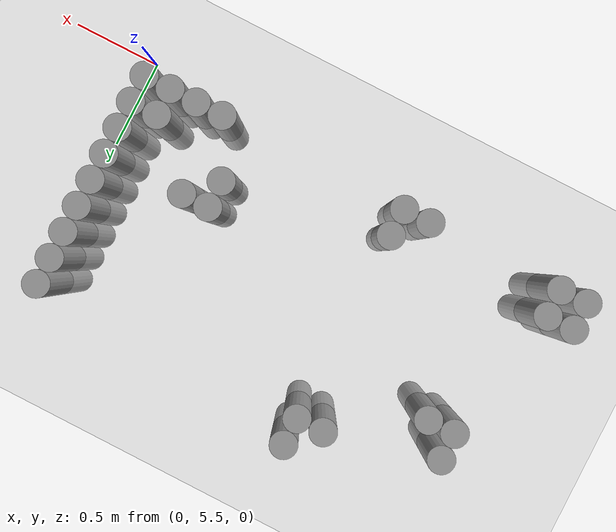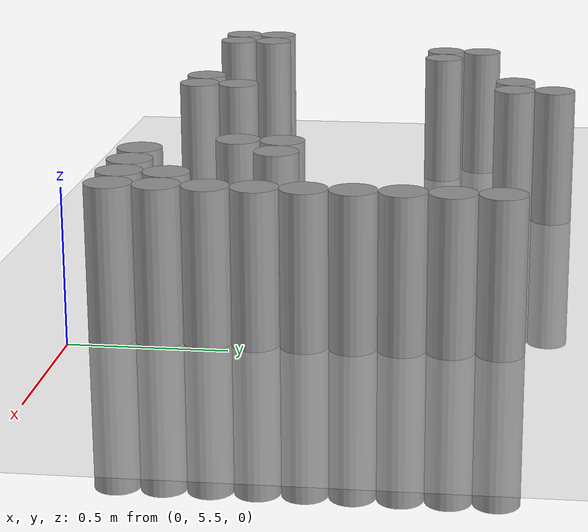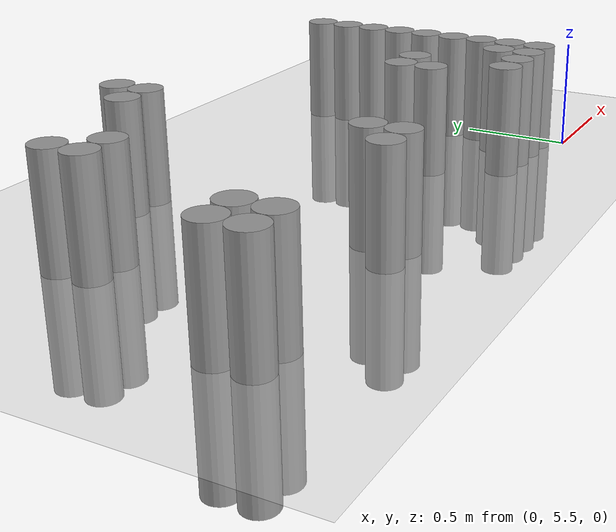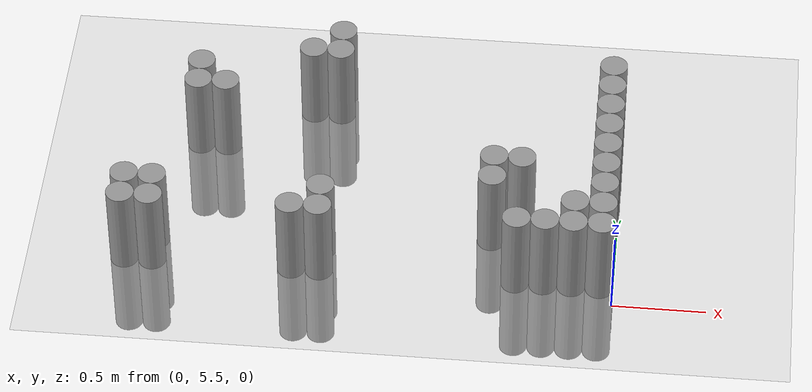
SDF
<sdf version="1.6">
 <world name="default">
  <model name="ground_plane">
   <static>1</static>
   <static>1</static>
   <link name="link">
    <collision name="collision">
     <geometry><plane><normal>0 0 1</normal><size>100 100</size></plane></geometry>
     <surface><friction><ode><mu>100</mu><mu2>50</mu2></ode></friction></surface>
    </collision>
    <visual name="visual">
     <cast_shadows>0</cast_shadows>
     <geometry><plane><normal>0 0 1</normal><size>100 100</size></plane></geometry>
     <material>
      <script><uri>file://media/materials/scripts/gazebo.material</uri><name>Gazebo/Grey</name></script>
     </material>
    </visual>
   </link>
  </model>
  <model name="unit_cylinder_163">
   <static>1</static>
   <pose>-2.625000 5.625000 0.000000 0.000000 0.000000 0.000000</pose>
   <link name="link">
    <inertial>
     <mass>1</mass>
     <inertia><ixx>0.145833</ixx><ixy>0</ixy><ixz>0</ixz><iyy>0.145833</iyy><iyz>0</iyz><izz>0.125</izz></inertia>
    </inertial>
    <collision name="collision">
     <geometry><cylinder><radius>0.075000</radius><length>1</length></cylinder></geometry>
    </collision>
    <visual name="visual">
     <geometry><cylinder><radius>0.075000</radius><length>1</length></cylinder></geometry>
     <material>
      <script><name>Gazebo/Grey</name><uri>file://media/materials/scripts/gazebo.material</uri></script>
     </material>
    </visual>
   </link>
  </model>
  <model name="unit_cylinder_164">
   <static>1</static>
   <pose>-2.625000 5.775000 0.000000 0.000000 0.000000 0.000000</pose>
   <link name="link">
    <inertial>
     <mass>1</mass>
     <inertia><ixx>0.145833</ixx><ixy>0</ixy><ixz>0</ixz><iyy>0.145833</iyy><iyz>0</iyz><izz>0.125</izz></inertia>
    </inertial>
    <collision name="collision">
     <geometry><cylinder><radius>0.075000</radius><length>1</length></cylinder></geometry>
    </collision>
    <visual name="visual">
     <geometry><cylinder><radius>0.075000</radius><length>1</length></cylinder></geometry>
     <material>
      <script><name>Gazebo/Grey</name><uri>file://media/materials/scripts/gazebo.material</uri></script>
     </material>
    </visual>
   </link>
  </model>
  <model name="unit_cylinder_168">
   <static>1</static>
   <pose>-2.475000 5.625000 0.000000 0.000000 0.000000 0.000000</pose>
   <link name="link">
    <inertial>
     <mass>1</mass>
     <inertia><ixx>0.145833</ixx><ixy>0</ixy><ixz>0</ixz><iyy>0.145833</iyy><iyz>0</iyz><izz>0.125</izz></inertia>
    </inertial>
    <collision name="collision">
     <geometry><cylinder><radius>0.075000</radius><length>1</length></cylinder></geometry>
    </collision>
    <visual name="visual">
     <geometry><cylinder><radius>0.075000</radius><length>1</length></cylinder></geometry>
     <material>
      <script><name>Gazebo/Grey</name><uri>file://media/materials/scripts/gazebo.material</uri></script>
     </material>
    </visual>
   </link>
  </model>
  <model name="unit_cylinder_169">
   <static>1</static>
   <pose>-2.475000 5.775000 0.000000 0.000000 0.000000 0.000000</pose>
   <link name="link">
    <inertial>
     <mass>1</mass>
     <inertia><ixx>0.145833</ixx><ixy>0</ixy><ixz>0</ixz><iyy>0.145833</iyy><iyz>0</iyz><izz>0.125</izz></inertia>
    </inertial>
    <collision name="collision">
     <geometry><cylinder><radius>0.075000</radius><length>1</length></cylinder></geometry>
    </collision>
    <visual name="visual">
     <geometry><cylinder><radius>0.075000</radius><length>1</length></cylinder></geometry>
     <material>
      <script><name>Gazebo/Grey</name><uri>file://media/materials/scripts/gazebo.material</uri></script>
     </material>
    </visual>
   </link>
  </model>
  <model name="unit_cylinder_175">
   <static>1</static>
   <pose>-2.325000 6.525000 0.000000 0.000000 0.000000 0.000000</pose>
   <link name="link">
    <inertial>
     <mass>1</mass>
     <inertia><ixx>0.145833</ixx><ixy>0</ixy><ixz>0</ixz><iyy>0.145833</iyy><iyz>0</iyz><izz>0.125</izz></inertia>
    </inertial>
    <collision name="collision">
     <geometry><cylinder><radius>0.075000</radius><length>1</length></cylinder></geometry>
    </collision>
    <visual name="visual">
     <geometry><cylinder><radius>0.075000</radius><length>1</length></cylinder></geometry>
     <material>
      <script><name>Gazebo/Grey</name><uri>file://media/materials/scripts/gazebo.material</uri></script>
     </material>
    </visual>
   </link>
  </model>
  <model name="unit_cylinder_176">
   <static>1</static>
   <pose>-2.325000 6.675000 0.000000 0.000000 0.000000 0.000000</pose>
   <link name="link">
    <inertial>
     <mass>1</mass>
     <inertia><ixx>0.145833</ixx><ixy>0</ixy><ixz>0</ixz><iyy>0.145833</iyy><iyz>0</iyz><izz>0.125</izz></inertia>
    </inertial>
    <collision name="collision">
     <geometry><cylinder><radius>0.075000</radius><length>1</length></cylinder></geometry>
    </collision>
    <visual name="visual">
     <geometry><cylinder><radius>0.075000</radius><length>1</length></cylinder></geometry>
     <material>
      <script><name>Gazebo/Grey</name><uri>file://media/materials/scripts/gazebo.material</uri></script>
     </material>
    </visual>
   </link>
  </model>
  <model name="unit_cylinder_179">
   <static>1</static>
   <pose>-2.175000 6.525000 0.000000 0.000000 0.000000 0.000000</pose>
   <link name="link">
    <inertial>
     <mass>1</mass>
     <inertia><ixx>0.145833</ixx><ixy>0</ixy><ixz>0</ixz><iyy>0.145833</iyy><iyz>0</iyz><izz>0.125</izz></inertia>
    </inertial>
    <collision name="collision">
     <geometry><cylinder><radius>0.075000</radius><length>1</length></cylinder></geometry>
    </collision>
    <visual name="visual">
     <geometry><cylinder><radius>0.075000</radius><length>1</length></cylinder></geometry>
     <material>
      <script><name>Gazebo/Grey</name><uri>file://media/materials/scripts/gazebo.material</uri></script>
     </material>
    </visual>
   </link>
  </model>
  <model name="unit_cylinder_180">
   <static>1</static>
   <pose>-1.725000 5.625000 0.000000 0.000000 0.000000 0.000000</pose>
   <link name="link">
    <inertial>
     <mass>1</mass>
     <inertia><ixx>0.145833</ixx><ixy>0</ixy><ixz>0</ixz><iyy>0.145833</iyy><iyz>0</iyz><izz>0.125</izz></inertia>
    </inertial>
    <collision name="collision">
     <geometry><cylinder><radius>0.075000</radius><length>1</length></cylinder></geometry>
    </collision>
    <visual name="visual">
     <geometry><cylinder><radius>0.075000</radius><length>1</length></cylinder></geometry>
     <material>
      <script><name>Gazebo/Grey</name><uri>file://media/materials/scripts/gazebo.material</uri></script>
     </material>
    </visual>
   </link>
  </model>
  <model name="unit_cylinder_181">
   <static>1</static>
   <pose>-1.725000 6.825000 0.000000 0.000000 0.000000 0.000000</pose>
   <link name="link">
    <inertial>
     <mass>1</mass>
     <inertia><ixx>0.145833</ixx><ixy>0</ixy><ixz>0</ixz><iyy>0.145833</iyy><iyz>0</iyz><izz>0.125</izz></inertia>
    </inertial>
    <collision name="collision">
     <geometry><cylinder><radius>0.075000</radius><length>1</length></cylinder></geometry>
    </collision>
    <visual name="visual">
     <geometry><cylinder><radius>0.075000</radius><length>1</length></cylinder></geometry>
     <material>
      <script><name>Gazebo/Grey</name><uri>file://media/materials/scripts/gazebo.material</uri></script>
     </material>
    </visual>
   </link>
  </model>
  <model name="unit_cylinder_182">
   <static>1</static>
   <pose>-1.575000 5.625000 0.000000 0.000000 0.000000 0.000000</pose>
   <link name="link">
    <inertial>
     <mass>1</mass>
     <inertia><ixx>0.145833</ixx><ixy>0</ixy><ixz>0</ixz><iyy>0.145833</iyy><iyz>0</iyz><izz>0.125</izz></inertia>
    </inertial>
    <collision name="collision">
     <geometry><cylinder><radius>0.075000</radius><length>1</length></cylinder></geometry>
    </collision>
    <visual name="visual">
     <geometry><cylinder><radius>0.075000</radius><length>1</length></cylinder></geometry>
     <material>
      <script><name>Gazebo/Grey</name><uri>file://media/materials/scripts/gazebo.material</uri></script>
     </material>
    </visual>
   </link>
  </model>
  <model name="unit_cylinder_183">
   <static>1</static>
   <pose>-1.575000 5.775000 0.000000 0.000000 0.000000 0.000000</pose>
   <link name="link">
    <inertial>
     <mass>1</mass>
     <inertia><ixx>0.145833</ixx><ixy>0</ixy><ixz>0</ixz><iyy>0.145833</iyy><iyz>0</iyz><izz>0.125</izz></inertia>
    </inertial>
    <collision name="collision">
     <geometry><cylinder><radius>0.075000</radius><length>1</length></cylinder></geometry>
    </collision>
    <visual name="visual">
     <geometry><cylinder><radius>0.075000</radius><length>1</length></cylinder></geometry>
     <material>
      <script><name>Gazebo/Grey</name><uri>file://media/materials/scripts/gazebo.material</uri></script>
     </material>
    </visual>
   </link>
  </model>
  <model name="unit_cylinder_184">
   <static>1</static>
   <pose>-1.575000 6.825000 0.000000 0.000000 0.000000 0.000000</pose>
   <link name="link">
    <inertial>
     <mass>1</mass>
     <inertia><ixx>0.145833</ixx><ixy>0</ixy><ixz>0</ixz><iyy>0.145833</iyy><iyz>0</iyz><izz>0.125</izz></inertia>
    </inertial>
    <collision name="collision">
     <geometry><cylinder><radius>0.075000</radius><length>1</length></cylinder></geometry>
    </collision>
    <visual name="visual">
     <geometry><cylinder><radius>0.075000</radius><length>1</length></cylinder></geometry>
     <material>
      <script><name>Gazebo/Grey</name><uri>file://media/materials/scripts/gazebo.material</uri></script>
     </material>
    </visual>
   </link>
  </model>
  <model name="unit_cylinder_185">
   <static>1</static>
   <pose>-1.575000 6.975000 0.000000 0.000000 0.000000 0.000000</pose>
   <link name="link">
    <inertial>
     <mass>1</mass>
     <inertia><ixx>0.145833</ixx><ixy>0</ixy><ixz>0</ixz><iyy>0.145833</iyy><iyz>0</iyz><izz>0.125</izz></inertia>
    </inertial>
    <collision name="collision">
     <geometry><cylinder><radius>0.075000</radius><length>1</length></cylinder></geometry>
    </collision>
    <visual name="visual">
     <geometry><cylinder><radius>0.075000</radius><length>1</length></cylinder></geometry>
     <material>
      <script><name>Gazebo/Grey</name><uri>file://media/materials/scripts/gazebo.material</uri></script>
     </material>
    </visual>
   </link>
  </model>
  <model name="unit_cylinder_189">
   <static>1</static>
   <pose>-0.675000 5.925000 0.000000 0.000000 0.000000 0.000000</pose>
   <link name="link">
    <inertial>
     <mass>1</mass>
     <inertia><ixx>0.145833</ixx><ixy>0</ixy><ixz>0</ixz><iyy>0.145833</iyy><iyz>0</iyz><izz>0.125</izz></inertia>
    </inertial>
    <collision name="collision">
     <geometry><cylinder><radius>0.075000</radius><length>1</length></cylinder></geometry>
    </collision>
    <visual name="visual">
     <geometry><cylinder><radius>0.075000</radius><length>1</length></cylinder></geometry>
     <material>
      <script><name>Gazebo/Grey</name><uri>file://media/materials/scripts/gazebo.material</uri></script>
     </material>
    </visual>
   </link>
  </model>
  <model name="unit_cylinder_190">
   <static>1</static>
   <pose>-0.675000 6.075000 0.000000 0.000000 0.000000 0.000000</pose>
   <link name="link">
    <inertial>
     <mass>1</mass>
     <inertia><ixx>0.145833</ixx><ixy>0</ixy><ixz>0</ixz><iyy>0.145833</iyy><iyz>0</iyz><izz>0.125</izz></inertia>
    </inertial>
    <collision name="collision">
     <geometry><cylinder><radius>0.075000</radius><length>1</length></cylinder></geometry>
    </collision>
    <visual name="visual">
     <geometry><cylinder><radius>0.075000</radius><length>1</length></cylinder></geometry>
     <material>
      <script><name>Gazebo/Grey</name><uri>file://media/materials/scripts/gazebo.material</uri></script>
     </material>
    </visual>
   </link>
  </model>
  <model name="unit_cylinder_192">
   <static>1</static>
   <pose>-0.525000 5.625000 0.000000 0.000000 0.000000 0.000000</pose>
   <link name="link">
    <inertial>
     <mass>1</mass>
     <inertia><ixx>0.145833</ixx><ixy>0</ixy><ixz>0</ixz><iyy>0.145833</iyy><iyz>0</iyz><izz>0.125</izz></inertia>
    </inertial>
    <collision name="collision">
     <geometry><cylinder><radius>0.075000</radius><length>1</length></cylinder></geometry>
    </collision>
    <visual name="visual">
     <geometry><cylinder><radius>0.075000</radius><length>1</length></cylinder></geometry>
     <material>
      <script><name>Gazebo/Grey</name><uri>file://media/materials/scripts/gazebo.material</uri></script>
     </material>
    </visual>
   </link>
  </model>
  <model name="unit_cylinder_193">
   <static>1</static>
   <pose>-0.525000 6.075000 0.000000 0.000000 0.000000 0.000000</pose>
   <link name="link">
    <inertial>
     <mass>1</mass>
     <inertia><ixx>0.145833</ixx><ixy>0</ixy><ixz>0</ixz><iyy>0.145833</iyy><iyz>0</iyz><izz>0.125</izz></inertia>
    </inertial>
    <collision name="collision">
     <geometry><cylinder><radius>0.075000</radius><length>1</length></cylinder></geometry>
    </collision>
    <visual name="visual">
     <geometry><cylinder><radius>0.075000</radius><length>1</length></cylinder></geometry>
     <material>
      <script><name>Gazebo/Grey</name><uri>file://media/materials/scripts/gazebo.material</uri></script>
     </material>
    </visual>
   </link>
  </model>
  <model name="unit_cylinder_195">
   <static>1</static>
   <pose>-0.375000 5.625000 0.000000 0.000000 0.000000 0.000000</pose>
   <link name="link">
    <inertial>
     <mass>1</mass>
     <inertia><ixx>0.145833</ixx><ixy>0</ixy><ixz>0</ixz><iyy>0.145833</iyy><iyz>0</iyz><izz>0.125</izz></inertia>
    </inertial>
    <collision name="collision">
     <geometry><cylinder><radius>0.075000</radius><length>1</length></cylinder></geometry>
    </collision>
    <visual name="visual">
     <geometry><cylinder><radius>0.075000</radius><length>1</length></cylinder></geometry>
     <material>
      <script><name>Gazebo/Grey</name><uri>file://media/materials/scripts/gazebo.material</uri></script>
     </material>
    </visual>
   </link>
  </model>
  <model name="unit_cylinder_198">
   <static>1</static>
   <pose>-0.225000 5.625000 0.000000 0.000000 0.000000 0.000000</pose>
   <link name="link">
    <inertial>
     <mass>1</mass>
     <inertia><ixx>0.145833</ixx><ixy>0</ixy><ixz>0</ixz><iyy>0.145833</iyy><iyz>0</iyz><izz>0.125</izz></inertia>
    </inertial>
    <collision name="collision">
     <geometry><cylinder><radius>0.075000</radius><length>1</length></cylinder></geometry>
    </collision>
    <visual name="visual">
     <geometry><cylinder><radius>0.075000</radius><length>1</length></cylinder></geometry>
     <material>
      <script><name>Gazebo/Grey</name><uri>file://media/materials/scripts/gazebo.material</uri></script>
     </material>
    </visual>
   </link>
  </model>
  <model name="unit_cylinder_199">
   <static>1</static>
   <pose>-0.225000 5.775000 0.000000 0.000000 0.000000 0.000000</pose>
   <link name="link">
    <inertial>
     <mass>1</mass>
     <inertia><ixx>0.145833</ixx><ixy>0</ixy><ixz>0</ixz><iyy>0.145833</iyy><iyz>0</iyz><izz>0.125</izz></inertia>
    </inertial>
    <collision name="collision">
     <geometry><cylinder><radius>0.075000</radius><length>1</length></cylinder></geometry>
    </collision>
    <visual name="visual">
     <geometry><cylinder><radius>0.075000</radius><length>1</length></cylinder></geometry>
     <material>
      <script><name>Gazebo/Grey</name><uri>file://media/materials/scripts/gazebo.material</uri></script>
     </material>
    </visual>
   </link>
  </model>
  <model name="unit_cylinder_209">
   <static>1</static>
   <pose>-0.075000 5.625000 0.000000 0.000000 0.000000 0.000000</pose>
   <link name="link">
    <inertial>
     <mass>1</mass>
     <inertia><ixx>0.145833</ixx><ixy>0</ixy><ixz>0</ixz><iyy>0.145833</iyy><iyz>0</iyz><izz>0.125</izz></inertia>
    </inertial>
    <collision name="collision">
     <geometry><cylinder><radius>0.075000</radius><length>1</length></cylinder></geometry>
    </collision>
    <visual name="visual">
     <geometry><cylinder><radius>0.075000</radius><length>1</length></cylinder></geometry>
     <material>
      <script><name>Gazebo/Grey</name><uri>file://media/materials/scripts/gazebo.material</uri></script>
     </material>
    </visual>
   </link>
  </model>
  <model name="unit_cylinder_210">
   <static>1</static>
   <pose>-0.075000 5.775000 0.000000 0.000000 0.000000 0.000000</pose>
   <link name="link">
    <inertial>
     <mass>1</mass>
     <inertia><ixx>0.145833</ixx><ixy>0</ixy><ixz>0</ixz><iyy>0.145833</iyy><iyz>0</iyz><izz>0.125</izz></inertia>
    </inertial>
    <collision name="collision">
     <geometry><cylinder><radius>0.075000</radius><length>1</length></cylinder></geometry>
    </collision>
    <visual name="visual">
     <geometry><cylinder><radius>0.075000</radius><length>1</length></cylinder></geometry>
     <material>
      <script><name>Gazebo/Grey</name><uri>file://media/materials/scripts/gazebo.material</uri></script>
     </material>
    </visual>
   </link>
  </model>
  <model name="unit_cylinder_211">
   <static>1</static>
   <pose>-0.075000 5.925000 0.000000 0.000000 0.000000 0.000000</pose>
   <link name="link">
    <inertial>
     <mass>1</mass>
     <inertia><ixx>0.145833</ixx><ixy>0</ixy><ixz>0</ixz><iyy>0.145833</iyy><iyz>0</iyz><izz>0.125</izz></inertia>
    </inertial>
    <collision name="collision">
     <geometry><cylinder><radius>0.075000</radius><length>1</length></cylinder></geometry>
    </collision>
    <visual name="visual">
     <geometry><cylinder><radius>0.075000</radius><length>1</length></cylinder></geometry>
     <material>
      <script><name>Gazebo/Grey</name><uri>file://media/materials/scripts/gazebo.material</uri></script>
     </material>
    </visual>
   </link>
  </model>
  <model name="unit_cylinder_212">
   <static>1</static>
   <pose>-0.075000 6.075000 0.000000 0.000000 0.000000 0.000000</pose>
   <link name="link">
    <inertial>
     <mass>1</mass>
     <inertia><ixx>0.145833</ixx><ixy>0</ixy><ixz>0</ixz><iyy>0.145833</iyy><iyz>0</iyz><izz>0.125</izz></inertia>
    </inertial>
    <collision name="collision">
     <geometry><cylinder><radius>0.075000</radius><length>1</length></cylinder></geometry>
    </collision>
    <visual name="visual">
     <geometry><cylinder><radius>0.075000</radius><length>1</length></cylinder></geometry>
     <material>
      <script><name>Gazebo/Grey</name><uri>file://media/materials/scripts/gazebo.material</uri></script>
     </material>
    </visual>
   </link>
  </model>
  <model name="unit_cylinder_213">
   <static>1</static>
   <pose>-0.075000 6.225000 0.000000 0.000000 0.000000 0.000000</pose>
   <link name="link">
    <inertial>
     <mass>1</mass>
     <inertia><ixx>0.145833</ixx><ixy>0</ixy><ixz>0</ixz><iyy>0.145833</iyy><iyz>0</iyz><izz>0.125</izz></inertia>
    </inertial>
    <collision name="collision">
     <geometry><cylinder><radius>0.075000</radius><length>1</length></cylinder></geometry>
    </collision>
    <visual name="visual">
     <geometry><cylinder><radius>0.075000</radius><length>1</length></cylinder></geometry>
     <material>
      <script><name>Gazebo/Grey</name><uri>file://media/materials/scripts/gazebo.material</uri></script>
     </material>
    </visual>
   </link>
  </model>
  <model name="unit_cylinder_214">
   <static>1</static>
   <pose>-0.075000 6.375000 0.000000 0.000000 0.000000 0.000000</pose>
   <link name="link">
    <inertial>
     <mass>1</mass>
     <inertia><ixx>0.145833</ixx><ixy>0</ixy><ixz>0</ixz><iyy>0.145833</iyy><iyz>0</iyz><izz>0.125</izz></inertia>
    </inertial>
    <collision name="collision">
     <geometry><cylinder><radius>0.075000</radius><length>1</length></cylinder></geometry>
    </collision>
    <visual name="visual">
     <geometry><cylinder><radius>0.075000</radius><length>1</length></cylinder></geometry>
     <material>
      <script><name>Gazebo/Grey</name><uri>file://media/materials/scripts/gazebo.material</uri></script>
     </material>
    </visual>
   </link>
  </model>
  <model name="unit_cylinder_215">
   <static>1</static>
   <pose>-0.075000 6.525000 0.000000 0.000000 0.000000 0.000000</pose>
   <link name="link">
    <inertial>
     <mass>1</mass>
     <inertia><ixx>0.145833</ixx><ixy>0</ixy><ixz>0</ixz><iyy>0.145833</iyy><iyz>0</iyz><izz>0.125</izz></inertia>
    </inertial>
    <collision name="collision">
     <geometry><cylinder><radius>0.075000</radius><length>1</length></cylinder></geometry>
    </collision>
    <visual name="visual">
     <geometry><cylinder><radius>0.075000</radius><length>1</length></cylinder></geometry>
     <material>
      <script><name>Gazebo/Grey</name><uri>file://media/materials/scripts/gazebo.material</uri></script>
     </material>
    </visual>
   </link>
  </model>
  <model name="unit_cylinder_216">
   <static>1</static>
   <pose>-0.075000 6.675000 0.000000 0.000000 0.000000 0.000000</pose>
   <link name="link">
    <inertial>
     <mass>1</mass>
     <inertia><ixx>0.145833</ixx><ixy>0</ixy><ixz>0</ixz><iyy>0.145833</iyy><iyz>0</iyz><izz>0.125</izz></inertia>
    </inertial>
    <collision name="collision">
     <geometry><cylinder><radius>0.075000</radius><length>1</length></cylinder></geometry>
    </collision>
    <visual name="visual">
     <geometry><cylinder><radius>0.075000</radius><length>1</length></cylinder></geometry>
     <material>
      <script><name>Gazebo/Grey</name><uri>file://media/materials/scripts/gazebo.material</uri></script>
     </material>
    </visual>
   </link>
  </model>
  <model name="unit_cylinder_217">
   <static>1</static>
   <pose>-0.075000 6.825000 0.000000 0.000000 0.000000 0.000000</pose>
   <link name="link">
    <inertial>
     <mass>1</mass>
     <inertia><ixx>0.145833</ixx><ixy>0</ixy><ixz>0</ixz><iyy>0.145833</iyy><iyz>0</iyz><izz>0.125</izz></inertia>
    </inertial>
    <collision name="collision">
     <geometry><cylinder><radius>0.075000</radius><length>1</length></cylinder></geometry>
    </collision>
    <visual name="visual">
     <geometry><cylinder><radius>0.075000</radius><length>1</length></cylinder></geometry>
     <material>
      <script><name>Gazebo/Grey</name><uri>file://media/materials/scripts/gazebo.material</uri></script>
     </material>
    </visual>
   </link>
  </model>
 </world>
</sdf>
